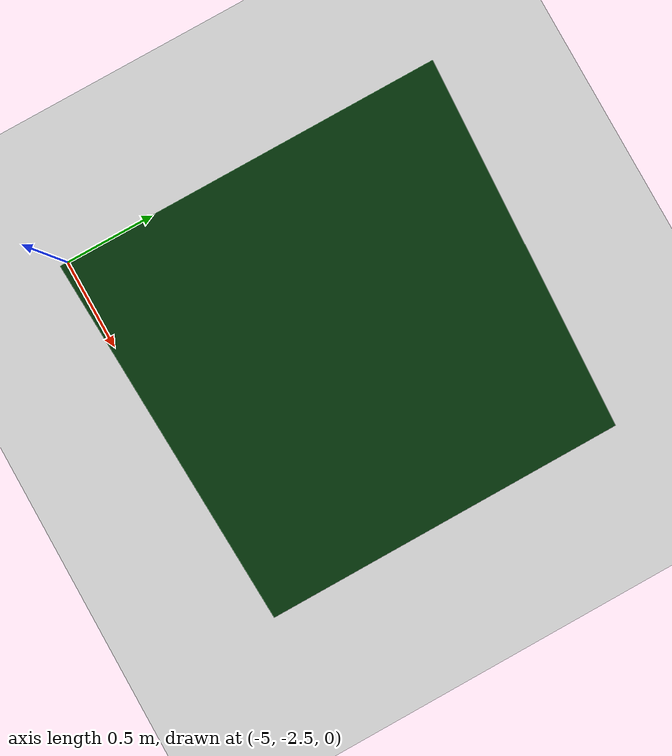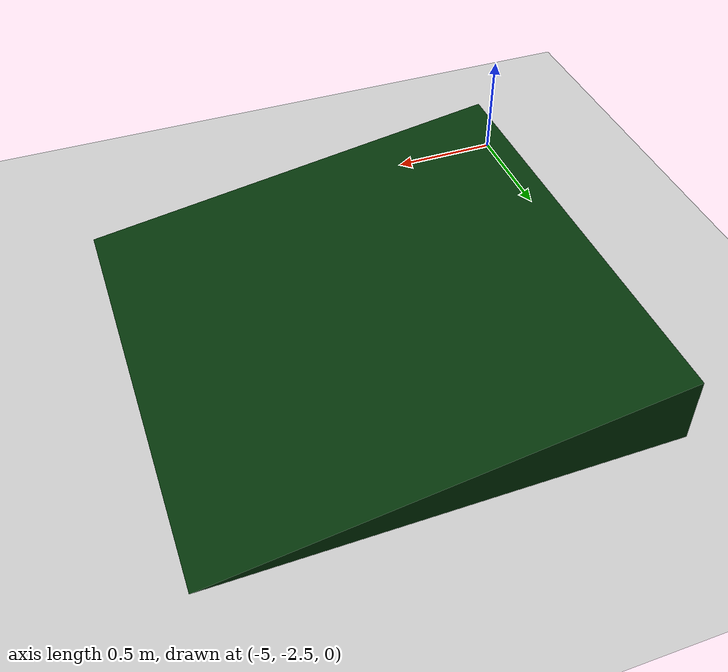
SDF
<sdf version="1.7">
 <world name="default">
  <model name="ground_plane">
   <static>1</static>
   <link name="link">
    <collision name="collision">
     <geometry><plane><normal>0 0 1</normal><size>100 100</size></plane></geometry>
     <surface>
      <contact><collide_bitmask>65535</collide_bitmask></contact>
      <friction><ode><mu>100</mu><mu2>50</mu2></ode></friction>
     </surface>
    </collision>
    <visual name="visual">
     <cast_shadows>0</cast_shadows>
     <geometry><plane><normal>0 0 1</normal><size>100 100</size></plane></geometry>
     <material>
      <script><uri>file://media/materials/scripts/gazebo.material</uri><name>Gazebo/Grey</name></script>
     </material>
    </visual>
   </link>
  </model>
  <gravity>0 0 -9.8</gravity>
  <magnetic_field>6e-06 2.3e-05 -4.2e-05</magnetic_field>
  <atmosphere type="adiabatic"/>
  <physics type="ode">
   <max_step_size>0.001</max_step_size>
   <real_time_factor>1</real_time_factor>
   <real_time_update_rate>1000</real_time_update_rate>
  </physics>
  <scene><ambient>0.4 0.4 0.4 1</ambient><background>0.7 0.7 0.7 1</background><shadows>1</shadows></scene>
  <spherical_coordinates>
   <surface_model>EARTH_WGS84</surface_model>
   <latitude_deg>0</latitude_deg>
   <longitude_deg>0</longitude_deg>
   <elevation>0</elevation>
   <heading_deg>0</heading_deg>
  </spherical_coordinates>
  <model name="ramp">
   <link name="link">
    <inertial>
     <pose>0 0 0.0175 0 -0 0</pose>
     <mass>1</mass>
     <inertia><ixx>0.01</ixx><ixy>0</ixy><ixz>0.01</ixz><iyy>0</iyy><iyz>0.01</iyz><izz>0</izz></inertia>
    </inertial>
    <collision name="collision"><geometry><mesh><uri>model://ramp/ramp.dae</uri></mesh></geometry></collision>
    <visual name="visual"><geometry><mesh><uri>model://ramp/ramp.dae</uri></mesh></geometry></visual>
   </link>
   <pose>-3.89674 -1.45072 -5e-06 -5e-06 -0 0</pose>
  </model>
  <light name="user_point_light_0" type="point">
   <pose>-0.569049 1.82788 1 0 -0 0</pose>
   <diffuse>0.5 0.5 0.5 1</diffuse>
   <specular>0.1 0.1 0.1 1</specular>
   <attenuation>
    <range>20</range>
    <constant>0.5</constant>
    <linear>0.01</linear>
    <quadratic>0.001</quadratic>
   </attenuation>
   <cast_shadows>0</cast_shadows>
   <direction>0 0 -1</direction>
  </light>
  <light name="sun" type="directional">
   <pose>-0.144509 0.018371 10 0 -0 0</pose>
   <diffuse>0.8 0.8 0.8 1</diffuse>
   <specular>0.2 0.2 0.2 1</specular>
   <attenuation>
    <range>1000</range>
    <constant>0.9</constant>
    <linear>0.01</linear>
    <quadratic>0.001</quadratic>
   </attenuation>
   <direction>-0.5 0.1 -0.9</direction>
  </light>
 </world>
</sdf>
